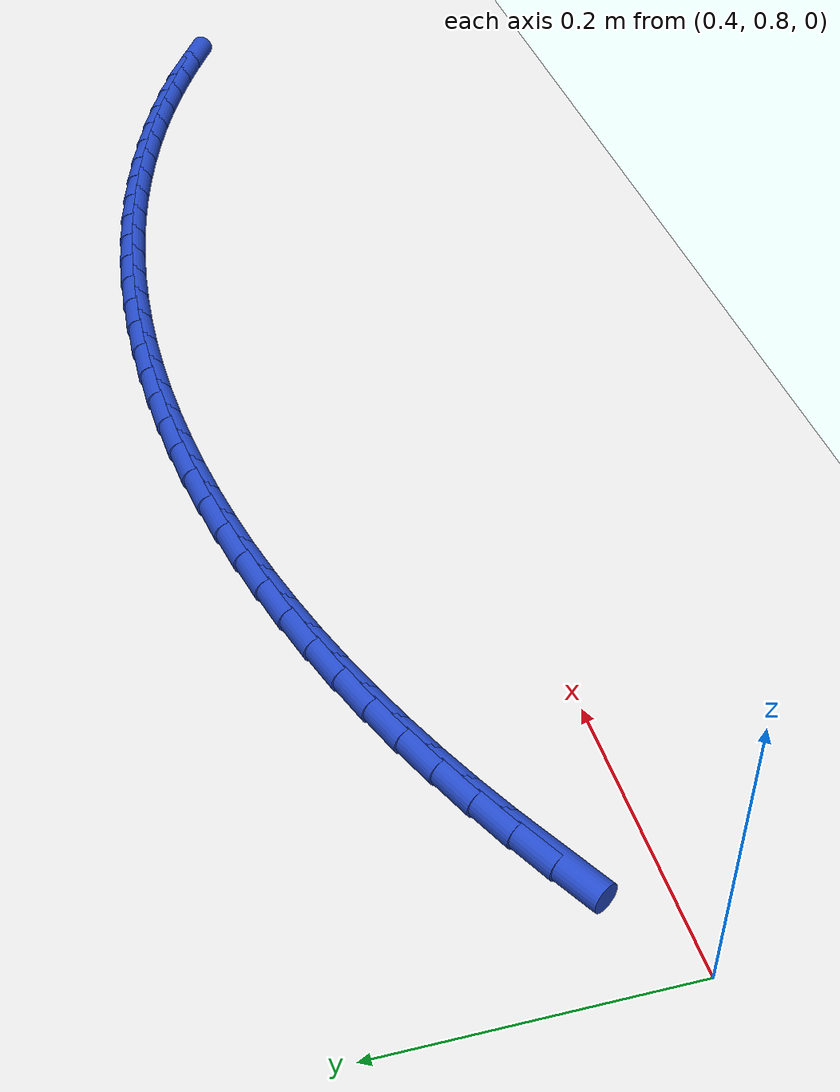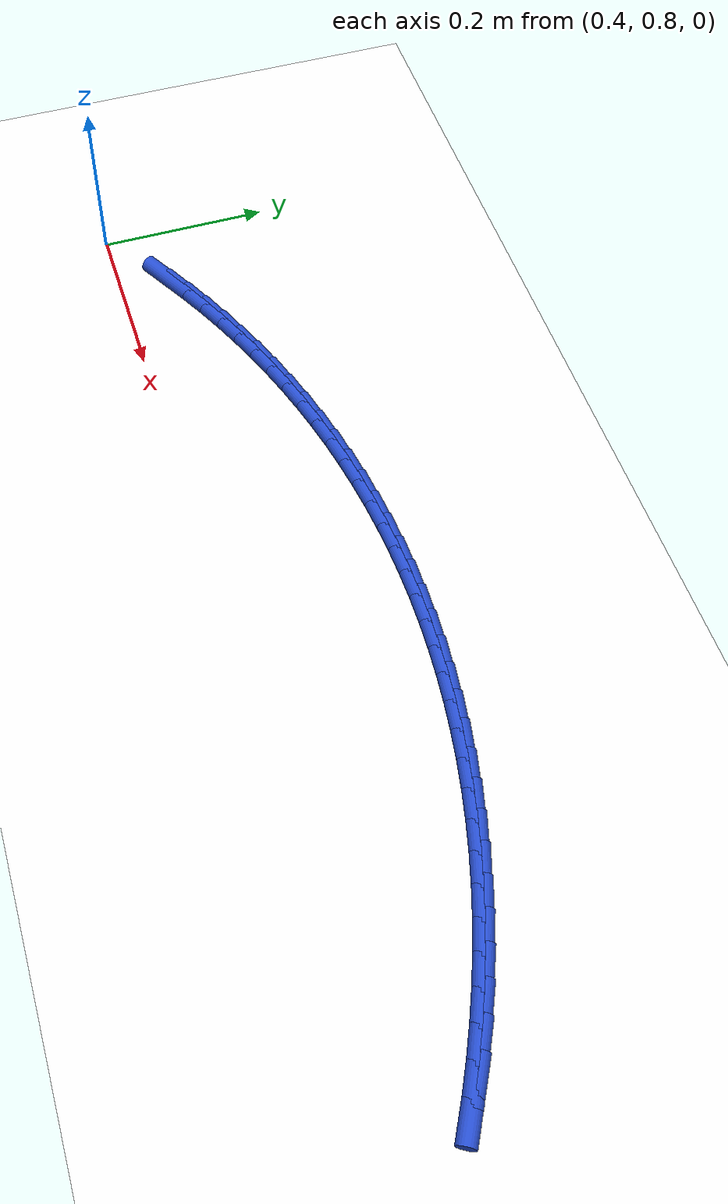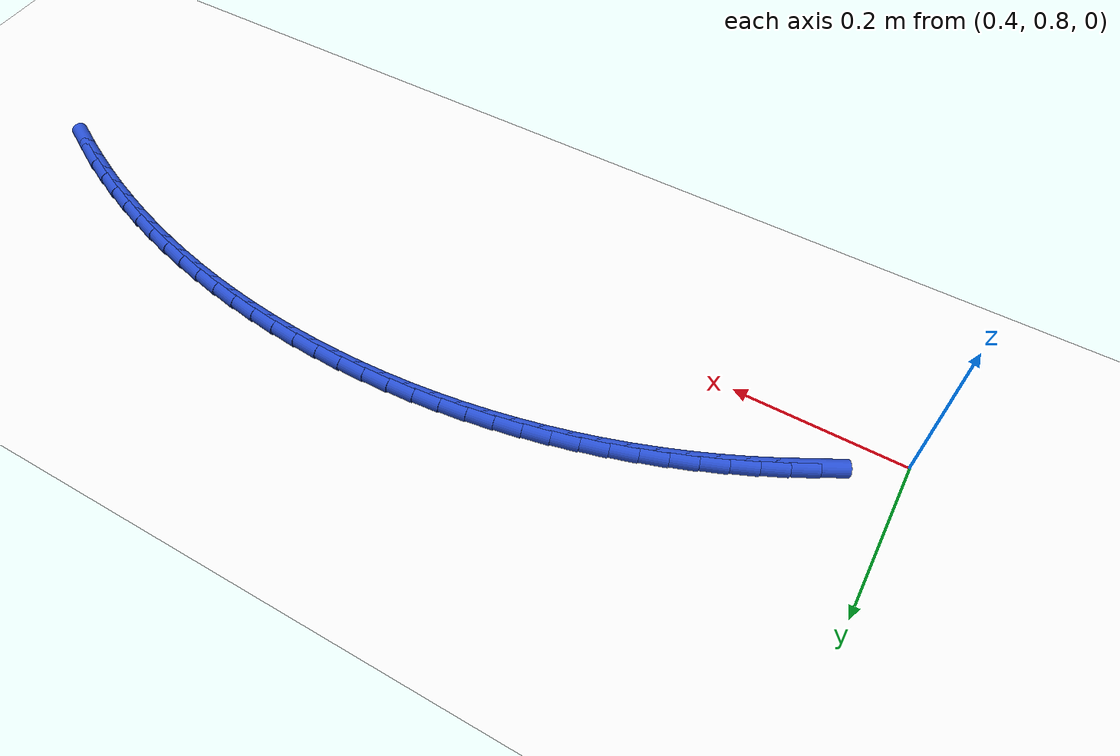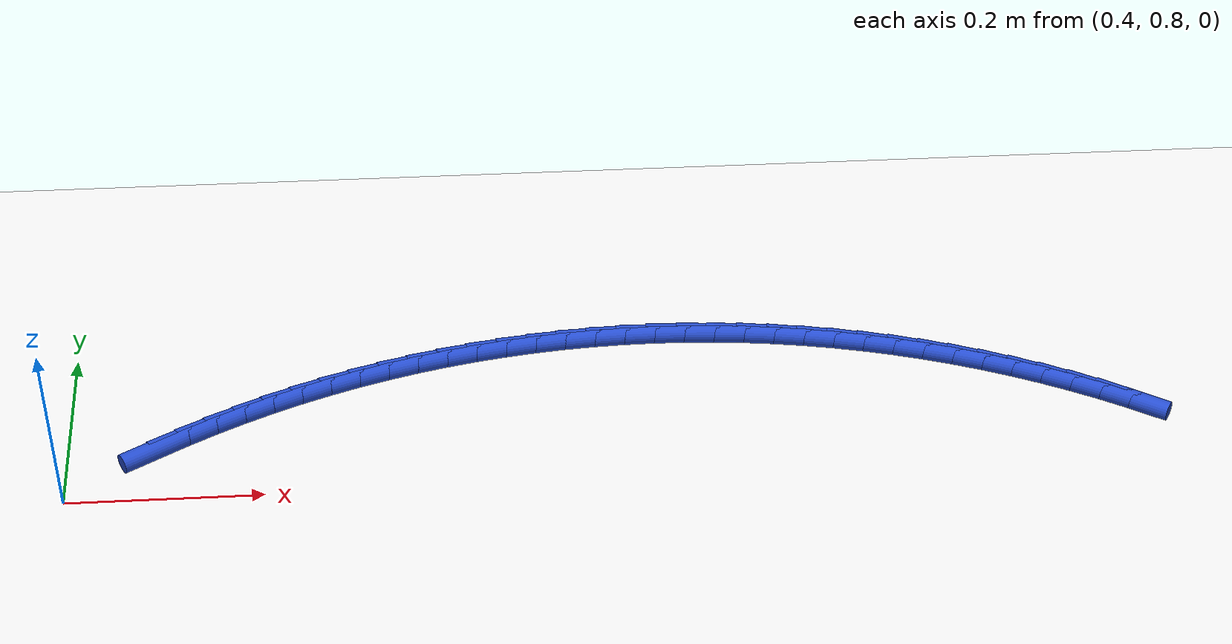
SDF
<sdf version="1.6">
 <world name="default">
  <model name="ground_plane">
   <static>1</static>
   <link name="link">
    <collision name="collision">
     <geometry><plane><normal>0 0 1</normal><size>100 100</size></plane></geometry>
     <surface><friction><ode><mu>100</mu><mu2>50</mu2></ode></friction></surface>
    </collision>
    <visual name="visual">
     <cast_shadows>0</cast_shadows>
     <geometry><plane><normal>0 0 1</normal><size>100 100</size></plane></geometry>
     <material>
      <script><uri>file://media/materials/scripts/gazebo.material</uri><name>Gazebo/WhiteGlow</name></script>
     </material>
    </visual>
   </link>
  </model>
  <model name="line">
   <static>1</static>
   <static>1</static>
   <static>1</static>
   <static>1</static>
   <static>1</static>
   <static>1</static>
   <static>1</static>
   <static>1</static>
   <static>1</static>
   <static>1</static>
   <static>1</static>
   <static>1</static>
   <static>1</static>
   <static>1</static>
   <static>1</static>
   <static>1</static>
   <static>1</static>
   <static>1</static>
   <static>1</static>
   <static>1</static>
   <static>1</static>
   <static>1</static>
   <static>1</static>
   <static>1</static>
   <static>1</static>
   <static>1</static>
   <static>1</static>
   <static>1</static>
   <static>1</static>
   <static>1</static>
   <static>1</static>
   <static>1</static>
   <static>1</static>
   <static>1</static>
   <link name="link_33">
    <pose>0.4909658808467507 0.8607250578068036 0.01 0 1.57 0.5181854342569836</pose>
    <collision name="collision">
     <geometry><cylinder><radius>0.01</radius><length>0.08</length></cylinder></geometry>
    </collision>
    <visual name="visual">
     <material>
      <script><name>Gazebo/Blue</name><uri>file://media/materials/scripts/gazebo.material</uri></script>
     </material>
     <geometry><cylinder><radius>0.01</radius><length>0.08</length></cylinder></geometry>
    </visual>
   </link>
   <static>1</static>
   <link name="link_34">
    <pose>0.51825661885854 0.8762850057765664 0.01 0 1.57 0.4868824520295401</pose>
    <collision name="collision">
     <geometry><cylinder><radius>0.01</radius><length>0.08</length></cylinder></geometry>
    </collision>
    <visual name="visual">
     <material>
      <script><name>Gazebo/Blue</name><uri>file://media/materials/scripts/gazebo.material</uri></script>
     </material>
     <geometry><cylinder><radius>0.01</radius><length>0.08</length></cylinder></geometry>
    </visual>
   </link>
   <static>1</static>
   <link name="link_35">
    <pose>0.546021303104431 0.8909833598027819 0.01 0 1.57 0.4555953440474025</pose>
    <collision name="collision">
     <geometry><cylinder><radius>0.01</radius><length>0.08</length></cylinder></geometry>
    </collision>
    <visual name="visual">
     <material>
      <script><name>Gazebo/Blue</name><uri>file://media/materials/scripts/gazebo.material</uri></script>
     </material>
     <geometry><cylinder><radius>0.01</radius><length>0.08</length></cylinder></geometry>
    </visual>
   </link>
   <static>1</static>
   <link name="link_36">
    <pose>0.5742321932352706 0.9048059854715791 0.01 0 1.57 0.424292361819947</pose>
    <collision name="collision">
     <geometry><cylinder><radius>0.01</radius><length>0.08</length></cylinder></geometry>
    </collision>
    <visual name="visual">
     <material>
      <script><name>Gazebo/Blue</name><uri>file://media/materials/scripts/gazebo.material</uri></script>
     </material>
     <geometry><cylinder><radius>0.01</radius><length>0.08</length></cylinder></geometry>
    </visual>
   </link>
   <static>1</static>
   <link name="link_37">
    <pose>0.6028615489019058 0.9177387483690859 0.01 0 1.57 0.3929418470050872</pose>
    <collision name="collision">
     <geometry><cylinder><radius>0.01</radius><length>0.08</length></cylinder></geometry>
    </collision>
    <visual name="visual">
     <material>
      <script><name>Gazebo/Blue</name><uri>file://media/materials/scripts/gazebo.material</uri></script>
     </material>
     <geometry><cylinder><radius>0.01</radius><length>0.08</length></cylinder></geometry>
    </visual>
   </link>
   <static>1</static>
   <link name="link_38">
    <pose>0.6318816297551834 0.9297675140814314 0.01 0 1.57 0.3615124131326446</pose>
    <collision name="collision">
     <geometry><cylinder><radius>0.01</radius><length>0.08</length></cylinder></geometry>
    </collision>
    <visual name="visual">
     <material>
      <script><name>Gazebo/Blue</name><uri>file://media/materials/scripts/gazebo.material</uri></script>
     </material>
     <geometry><cylinder><radius>0.01</radius><length>0.08</length></cylinder></geometry>
    </visual>
   </link>
   <static>1</static>
   <link name="link_39">
    <pose>0.6612646954459501 0.9408781481947447 0.01 0 1.57 0.32997313157079977</pose>
    <collision name="collision">
     <geometry><cylinder><radius>0.01</radius><length>0.08</length></cylinder></geometry>
    </collision>
    <visual name="visual">
     <material>
      <script><name>Gazebo/Blue</name><uri>file://media/materials/scripts/gazebo.material</uri></script>
     </material>
     <geometry><cylinder><radius>0.01</radius><length>0.08</length></cylinder></geometry>
    </visual>
   </link>
   <static>1</static>
   <link name="link_40">
    <pose>0.6909830056250524 0.9510565162951532 0.01 0 1.57 0.2983453991471443</pose>
    <collision name="collision">
     <geometry><cylinder><radius>0.01</radius><length>0.08</length></cylinder></geometry>
    </collision>
    <visual name="visual">
     <material>
      <script><name>Gazebo/Blue</name><uri>file://media/materials/scripts/gazebo.material</uri></script>
     </material>
     <geometry><cylinder><radius>0.01</radius><length>0.08</length></cylinder></geometry>
    </visual>
   </link>
   <static>1</static>
   <link name="link_41">
    <pose>0.7210083182658765 0.960290027973248 0.01 0 1.57 0.2668061175853348</pose>
    <collision name="collision">
     <geometry><cylinder><radius>0.01</radius><length>0.08</length></cylinder></geometry>
    </collision>
    <visual name="visual">
     <material>
      <script><name>Gazebo/Blue</name><uri>file://media/materials/scripts/gazebo.material</uri></script>
     </material>
     <geometry><cylinder><radius>0.01</radius><length>0.08</length></cylinder></geometry>
    </visual>
   </link>
   <static>1</static>
   <link name="link_42">
    <pose>0.7513103846319652 0.9685722688374698 0.01 0 1.57 0.23537668371286743</pose>
    <collision name="collision">
     <geometry><cylinder><radius>0.01</radius><length>0.08</length></cylinder></geometry>
    </collision>
    <visual name="visual">
     <material>
      <script><name>Gazebo/Blue</name><uri>file://media/materials/scripts/gazebo.material</uri></script>
     </material>
     <geometry><cylinder><radius>0.01</radius><length>0.08</length></cylinder></geometry>
    </visual>
   </link>
   <static>1</static>
   <link name="link_43">
    <pose>0.7818584543093999 0.9758983685007192 0.01 0 1.57 0.204026168898003</pose>
    <collision name="collision">
     <geometry><cylinder><radius>0.01</radius><length>0.08</length></cylinder></geometry>
    </collision>
    <visual name="visual">
     <material>
      <script><name>Gazebo/Blue</name><uri>file://media/materials/scripts/gazebo.material</uri></script>
     </material>
     <geometry><cylinder><radius>0.01</radius><length>0.08</length></cylinder></geometry>
    </visual>
   </link>
   <static>1</static>
   <link name="link_44">
    <pose>0.8126217768842625 0.9822634565758983 0.01 0 1.57 0.17272318667056447</pose>
    <collision name="collision">
     <geometry><cylinder><radius>0.01</radius><length>0.08</length></cylinder></geometry>
    </collision>
    <visual name="visual">
     <material>
      <script><name>Gazebo/Blue</name><uri>file://media/materials/scripts/gazebo.material</uri></script>
     </material>
     <geometry><cylinder><radius>0.01</radius><length>0.08</length></cylinder></geometry>
    </visual>
   </link>
   <static>1</static>
   <link name="link_45">
    <pose>0.8435696019426346 0.9876626626759091 0.01 0 1.57 0.14143607868841418</pose>
    <collision name="collision">
     <geometry><cylinder><radius>0.01</radius><length>0.08</length></cylinder></geometry>
    </collision>
    <visual name="visual">
     <material>
      <script><name>Gazebo/Blue</name><uri>file://media/materials/scripts/gazebo.material</uri></script>
     </material>
     <geometry><cylinder><radius>0.01</radius><length>0.08</length></cylinder></geometry>
    </visual>
   </link>
   <static>1</static>
   <link name="link_46">
    <pose>0.8746711790705981 0.9920911164136531 0.01 0 1.57 0.11013309646097294</pose>
    <collision name="collision">
     <geometry><cylinder><radius>0.01</radius><length>0.08</length></cylinder></geometry>
    </collision>
    <visual name="visual">
     <material>
      <script><name>Gazebo/Blue</name><uri>file://media/materials/scripts/gazebo.material</uri></script>
     </material>
     <geometry><cylinder><radius>0.01</radius><length>0.08</length></cylinder></geometry>
    </visual>
   </link>
   <static>1</static>
   <link name="link_47">
    <pose>0.9058957578542346 0.9955439474020323 0.01 0 1.57 0.07878258164611084</pose>
    <collision name="collision">
     <geometry><cylinder><radius>0.01</radius><length>0.08</length></cylinder></geometry>
    </collision>
    <visual name="visual">
     <material>
      <script><name>Gazebo/Blue</name><uri>file://media/materials/scripts/gazebo.material</uri></script>
     </material>
     <geometry><cylinder><radius>0.01</radius><length>0.08</length></cylinder></geometry>
    </visual>
   </link>
   <static>1</static>
   <link name="link_48">
    <pose>0.9372125878796257 0.9980162852539486 0.01 0 1.57 0.047353147773665796</pose>
    <collision name="collision">
     <geometry><cylinder><radius>0.01</radius><length>0.08</length></cylinder></geometry>
    </collision>
    <visual name="visual">
     <material>
      <script><name>Gazebo/Blue</name><uri>file://media/materials/scripts/gazebo.material</uri></script>
     </material>
     <geometry><cylinder><radius>0.01</radius><length>0.08</length></cylinder></geometry>
    </visual>
   </link>
   <static>1</static>
   <link name="link_49">
    <pose>0.9685909187328537 0.999503259582304 0.01 0 1.57 0.01581386621182451</pose>
    <collision name="collision">
     <geometry><cylinder><radius>0.01</radius><length>0.08</length></cylinder></geometry>
    </collision>
    <visual name="visual">
     <material>
      <script><name>Gazebo/Blue</name><uri>file://media/materials/scripts/gazebo.material</uri></script>
     </material>
     <geometry><cylinder><radius>0.01</radius><length>0.08</length></cylinder></geometry>
    </visual>
   </link>
   <static>1</static>
   <link name="link_50">
    <pose>0.9999999999999999 0.9999999999999998 0.01 0 1.57 -0.015813866211828096</pose>
    <collision name="collision">
     <geometry><cylinder><radius>0.01</radius><length>0.08</length></cylinder></geometry>
    </collision>
    <visual name="visual">
     <material>
      <script><name>Gazebo/Blue</name><uri>file://media/materials/scripts/gazebo.material</uri></script>
     </material>
     <geometry><cylinder><radius>0.01</radius><length>0.08</length></cylinder></geometry>
    </visual>
   </link>
   <static>1</static>
   <link name="link_51">
    <pose>1.031409081267146 0.9995032595823039 0.01 0 1.57 -0.04735314777366294</pose>
    <collision name="collision">
     <geometry><cylinder><radius>0.01</radius><length>0.08</length></cylinder></geometry>
    </collision>
    <visual name="visual">
     <material>
      <script><name>Gazebo/Blue</name><uri>file://media/materials/scripts/gazebo.material</uri></script>
     </material>
     <geometry><cylinder><radius>0.01</radius><length>0.08</length></cylinder></geometry>
    </visual>
   </link>
   <static>1</static>
   <link name="link_52">
    <pose>1.0627874121203735 0.9980162852539486 0.01 0 1.57 -0.07878258164609832</pose>
    <collision name="collision">
     <geometry><cylinder><radius>0.01</radius><length>0.08</length></cylinder></geometry>
    </collision>
    <visual name="visual">
     <material>
      <script><name>Gazebo/Blue</name><uri>file://media/materials/scripts/gazebo.material</uri></script>
     </material>
     <geometry><cylinder><radius>0.01</radius><length>0.08</length></cylinder></geometry>
    </visual>
   </link>
   <static>1</static>
   <link name="link_53">
    <pose>1.0941042421457654 0.9955439474020327 0.01 0 1.57 -0.11013309646098346</pose>
    <collision name="collision">
     <geometry><cylinder><radius>0.01</radius><length>0.08</length></cylinder></geometry>
    </collision>
    <visual name="visual">
     <material>
      <script><name>Gazebo/Blue</name><uri>file://media/materials/scripts/gazebo.material</uri></script>
     </material>
     <geometry><cylinder><radius>0.01</radius><length>0.08</length></cylinder></geometry>
    </visual>
   </link>
   <static>1</static>
   <link name="link_54">
    <pose>1.125328820929402 0.9920911164136531 0.01 0 1.57 -0.14143607868842215</pose>
    <collision name="collision">
     <geometry><cylinder><radius>0.01</radius><length>0.08</length></cylinder></geometry>
    </collision>
    <visual name="visual">
     <material>
      <script><name>Gazebo/Blue</name><uri>file://media/materials/scripts/gazebo.material</uri></script>
     </material>
     <geometry><cylinder><radius>0.01</radius><length>0.08</length></cylinder></geometry>
    </visual>
   </link>
   <static>1</static>
   <link name="link_55">
    <pose>1.1564303980573651 0.9876626626759089 0.01 0 1.57 -0.1727231866705516</pose>
    <collision name="collision">
     <geometry><cylinder><radius>0.01</radius><length>0.08</length></cylinder></geometry>
    </collision>
    <visual name="visual">
     <material>
      <script><name>Gazebo/Blue</name><uri>file://media/materials/scripts/gazebo.material</uri></script>
     </material>
     <geometry><cylinder><radius>0.01</radius><length>0.08</length></cylinder></geometry>
    </visual>
   </link>
   <static>1</static>
   <link name="link_56">
    <pose>1.1873782231157377 0.9822634565758984 0.01 0 1.57 -0.2040261688980037</pose>
    <collision name="collision">
     <geometry><cylinder><radius>0.01</radius><length>0.08</length></cylinder></geometry>
    </collision>
    <visual name="visual">
     <material>
      <script><name>Gazebo/Blue</name><uri>file://media/materials/scripts/gazebo.material</uri></script>
     </material>
     <geometry><cylinder><radius>0.01</radius><length>0.08</length></cylinder></geometry>
    </visual>
   </link>
   <static>1</static>
   <link name="link_57">
    <pose>1.2181415456906002 0.9758983685007193 0.01 0 1.57 -0.23537668371287074</pose>
    <collision name="collision">
     <geometry><cylinder><radius>0.01</radius><length>0.08</length></cylinder></geometry>
    </collision>
    <visual name="visual">
     <material>
      <script><name>Gazebo/Blue</name><uri>file://media/materials/scripts/gazebo.material</uri></script>
     </material>
     <geometry><cylinder><radius>0.01</radius><length>0.08</length></cylinder></geometry>
    </visual>
   </link>
   <static>1</static>
   <link name="link_58">
    <pose>1.2486896153680345 0.9685722688374699 0.01 0 1.57 -0.2668061175853245</pose>
    <collision name="collision">
     <geometry><cylinder><radius>0.01</radius><length>0.08</length></cylinder></geometry>
    </collision>
    <visual name="visual">
     <material>
      <script><name>Gazebo/Blue</name><uri>file://media/materials/scripts/gazebo.material</uri></script>
     </material>
     <geometry><cylinder><radius>0.01</radius><length>0.08</length></cylinder></geometry>
    </visual>
   </link>
   <static>1</static>
   <link name="link_59">
    <pose>1.2789916817341231 0.9602900279732485 0.01 0 1.57 -0.29834539914715236</pose>
    <collision name="collision">
     <geometry><cylinder><radius>0.01</radius><length>0.08</length></cylinder></geometry>
    </collision>
    <visual name="visual">
     <material>
      <script><name>Gazebo/Blue</name><uri>file://media/materials/scripts/gazebo.material</uri></script>
     </material>
     <geometry><cylinder><radius>0.01</radius><length>0.08</length></cylinder></geometry>
    </visual>
   </link>
   <static>1</static>
   <link name="link_60">
    <pose>1.3090169943749475 0.9510565162951533 0.01 0 1.57 -0.3299731315708098</pose>
    <collision name="collision">
     <geometry><cylinder><radius>0.01</radius><length>0.08</length></cylinder></geometry>
    </collision>
    <visual name="visual">
     <material>
      <script><name>Gazebo/Blue</name><uri>file://media/materials/scripts/gazebo.material</uri></script>
     </material>
     <geometry><cylinder><radius>0.01</radius><length>0.08</length></cylinder></geometry>
    </visual>
   </link>
   <static>1</static>
   <link name="link_61">
    <pose>1.3387353045540498 0.9408781481947445 0.01 0 1.57 -0.3615124131326438</pose>
    <collision name="collision">
     <geometry><cylinder><radius>0.01</radius><length>0.08</length></cylinder></geometry>
    </collision>
    <visual name="visual">
     <material>
      <script><name>Gazebo/Blue</name><uri>file://media/materials/scripts/gazebo.material</uri></script>
     </material>
     <geometry><cylinder><radius>0.01</radius><length>0.08</length></cylinder></geometry>
    </visual>
   </link>
   <static>1</static>
   <link name="link_62">
    <pose>1.3681183702448163 0.9297675140814313 0.01 0 1.57 -0.3929418470050913</pose>
    <collision name="collision">
     <geometry><cylinder><radius>0.01</radius><length>0.08</length></cylinder></geometry>
    </collision>
    <visual name="visual">
     <material>
      <script><name>Gazebo/Blue</name><uri>file://media/materials/scripts/gazebo.material</uri></script>
     </material>
     <geometry><cylinder><radius>0.01</radius><length>0.08</length></cylinder></geometry>
    </visual>
   </link>
   <static>1</static>
   <link name="link_63">
    <pose>1.3971384510980935 0.9177387483690858 0.01 0 1.57 -0.4242923618199552</pose>
    <collision name="collision">
     <geometry><cylinder><radius>0.01</radius><length>0.08</length></cylinder></geometry>
    </collision>
    <visual name="visual">
     <material>
      <script><name>Gazebo/Blue</name><uri>file://media/materials/scripts/gazebo.material</uri></script>
     </material>
     <geometry><cylinder><radius>0.01</radius><length>0.08</length></cylinder></geometry>
    </visual>
   </link>
   <static>1</static>
   <link name="link_64">
    <pose>1.4257678067647288 0.9048059854715786 0.01 0 1.57 -0.4555953440473946</pose>
    <collision name="collision">
     <geometry><cylinder><radius>0.01</radius><length>0.08</length></cylinder></geometry>
    </collision>
    <visual name="visual">
     <material>
      <script><name>Gazebo/Blue</name><uri>file://media/materials/scripts/gazebo.material</uri></script>
     </material>
     <geometry><cylinder><radius>0.01</radius><length>0.08</length></cylinder></geometry>
    </visual>
   </link>
   <static>1</static>
   <link name="link_65">
    <pose>1.4539786968955686 0.8909833598027816 0.01 0 1.57 -0.4868824520295367</pose>
    <collision name="collision">
     <geometry><cylinder><radius>0.01</radius><length>0.08</length></cylinder></geometry>
    </collision>
    <visual name="visual">
     <material>
      <script><name>Gazebo/Blue</name><uri>file://media/materials/scripts/gazebo.material</uri></script>
     </material>
     <geometry><cylinder><radius>0.01</radius><length>0.08</length></cylinder></geometry>
    </visual>
   </link>
   <static>1</static>
   <link name="link_66">
    <pose>1.4817433811414598 0.8762850057765662 0.01 0 1.57 -0.5181854342569845</pose>
    <collision name="collision">
     <geometry><cylinder><radius>0.01</radius><length>0.08</length></cylinder></geometry>
    </collision>
    <visual name="visual">
     <material>
      <script><name>Gazebo/Blue</name><uri>file://media/materials/scripts/gazebo.material</uri></script>
     </material>
     <geometry><cylinder><radius>0.01</radius><length>0.08</length></cylinder></geometry>
    </visual>
   </link>
   <static>1</static>
   <static>1</static>
   <static>1</static>
   <static>1</static>
   <static>1</static>
   <static>1</static>
   <static>1</static>
   <static>1</static>
   <static>1</static>
   <static>1</static>
   <static>1</static>
   <static>1</static>
   <static>1</static>
   <static>1</static>
   <static>1</static>
   <static>1</static>
   <static>1</static>
   <static>1</static>
   <static>1</static>
   <static>1</static>
   <static>1</static>
   <static>1</static>
   <static>1</static>
   <static>1</static>
   <static>1</static>
   <static>1</static>
   <static>1</static>
   <static>1</static>
   <static>1</static>
   <static>1</static>
   <static>1</static>
   <static>1</static>
   <static>1</static>
   <static>1</static>
   <static>1</static>
   <static>1</static>
   <static>1</static>
   <static>1</static>
   <static>1</static>
   <static>1</static>
   <static>1</static>
   <static>1</static>
   <static>1</static>
   <static>1</static>
   <static>1</static>
   <static>1</static>
   <static>1</static>
   <static>1</static>
   <static>1</static>
   <static>1</static>
   <static>1</static>
   <static>1</static>
   <static>1</static>
   <static>1</static>
   <static>1</static>
   <static>1</static>
   <static>1</static>
   <static>1</static>
   <static>1</static>
   <static>1</static>
   <static>1</static>
   <static>1</static>
   <static>1</static>
   <static>1</static>
   <static>1</static>
   <static>1</static>
   <static>1</static>
   <static>1</static>
   <static>1</static>
   <static>1</static>
   <static>1</static>
   <static>1</static>
   <static>1</static>
   <static>1</static>
   <static>1</static>
   <static>1</static>
   <static>1</static>
   <static>1</static>
   <static>1</static>
   <static>1</static>
   <static>1</static>
   <static>1</static>
   <static>1</static>
   <static>1</static>
   <static>1</static>
   <static>1</static>
   <static>1</static>
   <static>1</static>
   <static>1</static>
   <static>1</static>
   <static>1</static>
   <static>1</static>
   <static>1</static>
   <static>1</static>
   <static>1</static>
   <static>1</static>
   <static>1</static>
   <static>1</static>
   <static>1</static>
   <static>1</static>
   <static>1</static>
   <static>1</static>
   <static>1</static>
   <static>1</static>
   <static>1</static>
   <static>1</static>
   <static>1</static>
   <static>1</static>
   <static>1</static>
   <static>1</static>
   <static>1</static>
   <static>1</static>
   <static>1</static>
   <static>1</static>
   <static>1</static>
   <static>1</static>
   <static>1</static>
   <static>1</static>
   <static>1</static>
   <static>1</static>
   <static>1</static>
   <static>1</static>
   <static>1</static>
   <static>1</static>
   <static>1</static>
   <static>1</static>
   <static>1</static>
   <static>1</static>
   <static>1</static>
   <static>1</static>
   <static>1</static>
   <static>1</static>
   <static>1</static>
   <static>1</static>
   <static>1</static>
  </model>
 </world>
</sdf>
